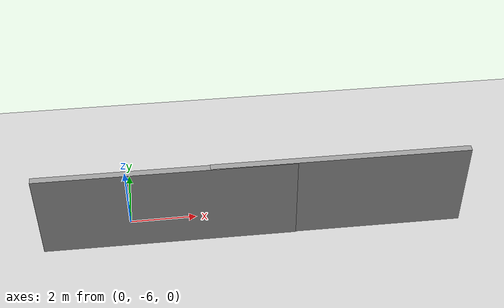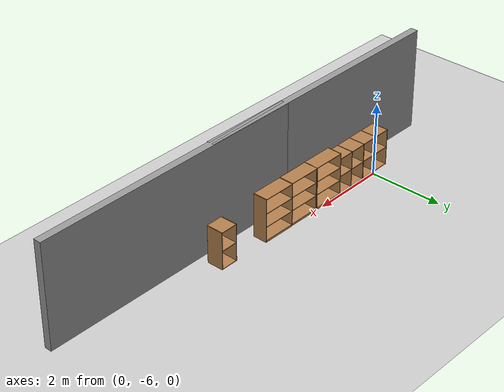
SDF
<sdf version="1.7">
 <world name="default">
  <model name="ground_plane">
   <static>1</static>
   <link name="link">
    <collision name="collision">
     <geometry><plane><normal>0 0 1</normal><size>100 100</size></plane></geometry>
     <surface><friction><ode><mu>100</mu><mu2>50</mu2></ode></friction></surface>
    </collision>
    <visual name="visual">
     <cast_shadows>0</cast_shadows>
     <geometry><plane><normal>0 0 1</normal><size>100 100</size></plane></geometry>
     <material>
      <script><uri>file://media/materials/scripts/gazebo.material</uri><name>Gazebo/Grey</name></script>
     </material>
    </visual>
   </link>
  </model>
  <model name="cabinet_clone">
   <static>1</static>
   <link name="cabinet_bottom_plate">
    <inertial>
     <pose>0 0 -1 0 -0 0</pose>
     <inertia><ixx>2.05</ixx><ixy>0</ixy><ixz>0</ixz><iyy>2.05</iyy><iyz>0</iyz><izz>2.05</izz></inertia>
     <mass>25</mass>
    </inertial>
    <collision name="cabinet_bottom_plate_geom">
     <pose>0 0 0.01 0 -0 0</pose>
     <geometry><box><size>0.45 0.45 0.02</size></box></geometry>
    </collision>
    <visual name="cabinet_bottom_plate_geom_visual">
     <pose>0 0 0.01 0 -0 0</pose>
     <geometry><box><size>0.45 0.45 0.02</size></box></geometry>
     <material>
      <script><uri>file://media/materials/scripts/gazebo.material</uri><name>Gazebo/Wood</name></script>
     </material>
    </visual>
    <collision name="cabinet_bottom_plate_geom_cabinet_back_plate">
     <pose>0.235 0 0.51 0 -0 0</pose>
     <geometry><box><size>0.02 0.45 1.02</size></box></geometry>
    </collision>
    <visual name="cabinet_bottom_plate_geom_cabinet_back_plate_visual">
     <pose>0.235 0 0.51 0 -0 0</pose>
     <geometry><box><size>0.02 0.45 1.02</size></box></geometry>
     <material>
      <script><uri>file://media/materials/scripts/gazebo.material</uri><name>Gazebo/Wood</name></script>
     </material>
    </visual>
    <collision name="cabinet_bottom_plate_geom_cabinet_left_plate">
     <pose>0 0.235 0.51 0 -0 0</pose>
     <geometry><box><size>0.45 0.02 1.02</size></box></geometry>
    </collision>
    <visual name="cabinet_bottom_plate_geom_cabinet_left_plate_visual">
     <pose>0 0.235 0.51 0 -0 0</pose>
     <geometry><box><size>0.45 0.02 1.02</size></box></geometry>
     <material>
      <script><uri>file://media/materials/scripts/gazebo.material</uri><name>Gazebo/Wood</name></script>
     </material>
    </visual>
    <collision name="cabinet_bottom_plate_geom_cabinet_middle_plate">
     <pose>0 0 0.51 0 -0 0</pose>
     <geometry><box><size>0.45 0.45 0.02</size></box></geometry>
    </collision>
    <visual name="cabinet_bottom_plate_geom_cabinet_middle_plate_visual">
     <pose>0 0 0.51 0 -0 0</pose>
     <geometry><box><size>0.45 0.45 0.02</size></box></geometry>
     <material>
      <script><uri>file://media/materials/scripts/gazebo.material</uri><name>Gazebo/Wood</name></script>
     </material>
    </visual>
    <collision name="cabinet_bottom_plate_geom_cabinet_right_plate">
     <pose>0 -0.235 0.51 0 -0 0</pose>
     <geometry><box><size>0.45 0.02 1.02</size></box></geometry>
    </collision>
    <visual name="cabinet_bottom_plate_geom_cabinet_right_plate_visual">
     <pose>0 -0.235 0.51 0 -0 0</pose>
     <geometry><box><size>0.45 0.02 1.02</size></box></geometry>
     <material>
      <script><uri>file://media/materials/scripts/gazebo.material</uri><name>Gazebo/Wood</name></script>
     </material>
    </visual>
    <collision name="cabinet_bottom_plate_geom_cabinet_top_plate">
     <pose>0 0 1.01 0 -0 0</pose>
     <geometry><box><size>0.45 0.45 0.02</size></box></geometry>
    </collision>
    <visual name="cabinet_bottom_plate_geom_cabinet_top_plate_visual">
     <pose>0 0 1.01 0 -0 0</pose>
     <geometry><box><size>0.45 0.45 0.02</size></box></geometry>
     <material>
      <script><uri>file://media/materials/scripts/gazebo.material</uri><name>Gazebo/Wood</name></script>
     </material>
    </visual>
   </link>
   <pose>5.23419 -6.26396 0 0 0 -1.56071</pose>
  </model>
  <model name="bookshelf_clone_1_clone">
   <static>1</static>
   <link name="link">
    <inertial><mass>1</mass></inertial>
    <collision name="back">
     <pose>0 0.005 0.6 0 -0 0</pose>
     <geometry><box><size>0.9 0.01 1.2</size></box></geometry>
    </collision>
    <visual name="visual1">
     <pose>0 0.005 0.6 0 -0 0</pose>
     <geometry><box><size>0.9 0.01 1.2</size></box></geometry>
     <material>
      <script><uri>file://media/materials/scripts/gazebo.material</uri><name>Gazebo/Wood</name></script>
     </material>
    </visual>
    <collision name="left_side">
     <pose>0.45 -0.195 0.6 0 -0 0</pose>
     <geometry><box><size>0.02 0.4 1.2</size></box></geometry>
    </collision>
    <visual name="visual2">
     <pose>0.45 -0.195 0.6 0 -0 0</pose>
     <geometry><box><size>0.02 0.4 1.2</size></box></geometry>
     <material>
      <script><uri>file://media/materials/scripts/gazebo.material</uri><name>Gazebo/Wood</name></script>
     </material>
    </visual>
    <collision name="right_side">
     <pose>-0.45 -0.195 0.6 0 -0 0</pose>
     <geometry><box><size>0.02 0.4 1.2</size></box></geometry>
    </collision>
    <visual name="visual3">
     <pose>-0.45 -0.195 0.6 0 -0 0</pose>
     <geometry><box><size>0.02 0.4 1.2</size></box></geometry>
     <material>
      <script><uri>file://media/materials/scripts/gazebo.material</uri><name>Gazebo/Wood</name></script>
     </material>
    </visual>
    <collision name="bottom">
     <pose>0 -0.195 0.03 0 -0 0</pose>
     <geometry><box><size>0.88 0.4 0.06</size></box></geometry>
    </collision>
    <visual name="visual4">
     <pose>0 -0.195 0.03 0 -0 0</pose>
     <geometry><box><size>0.88 0.4 0.06</size></box></geometry>
     <material>
      <script><uri>file://media/materials/scripts/gazebo.material</uri><name>Gazebo/Wood</name></script>
     </material>
    </visual>
    <collision name="top">
     <pose>0 -0.195 1.19 0 -0 0</pose>
     <geometry><box><size>0.88 0.4 0.02</size></box></geometry>
    </collision>
    <visual name="visual5">
     <pose>0 -0.195 1.19 0 -0 0</pose>
     <geometry><box><size>0.88 0.4 0.02</size></box></geometry>
     <material>
      <script><uri>file://media/materials/scripts/gazebo.material</uri><name>Gazebo/Wood</name></script>
     </material>
    </visual>
    <collision name="low_shelf">
     <pose>0 -0.195 0.43 0 -0 0</pose>
     <geometry><box><size>0.88 0.4 0.02</size></box></geometry>
    </collision>
    <visual name="visual6">
     <pose>0 -0.195 0.43 0 -0 0</pose>
     <geometry><box><size>0.88 0.4 0.02</size></box></geometry>
     <material>
      <script><uri>file://media/materials/scripts/gazebo.material</uri><name>Gazebo/Wood</name></script>
     </material>
    </visual>
    <collision name="high_shelf">
     <pose>0 -0.195 0.8 0 -0 0</pose>
     <geometry><box><size>0.88 0.4 0.02</size></box></geometry>
    </collision>
    <visual name="visual7">
     <pose>0 -0.195 0.8 0 -0 0</pose>
     <geometry><box><size>0.88 0.4 0.02</size></box></geometry>
     <material>
      <script><uri>file://media/materials/scripts/gazebo.material</uri><name>Gazebo/Wood</name></script>
     </material>
    </visual>
   </link>
   <pose>3.55377 -6.4057 0 0 -0 3.13655</pose>
  </model>
  <model name="bookshelf_clone_1_clone_clone">
   <static>1</static>
   <link name="link">
    <inertial><mass>1</mass></inertial>
    <collision name="back">
     <pose>0 0.005 0.6 0 -0 0</pose>
     <geometry><box><size>0.9 0.01 1.2</size></box></geometry>
    </collision>
    <visual name="visual1">
     <pose>0 0.005 0.6 0 -0 0</pose>
     <geometry><box><size>0.9 0.01 1.2</size></box></geometry>
     <material>
      <script><uri>file://media/materials/scripts/gazebo.material</uri><name>Gazebo/Wood</name></script>
     </material>
    </visual>
    <collision name="left_side">
     <pose>0.45 -0.195 0.6 0 -0 0</pose>
     <geometry><box><size>0.02 0.4 1.2</size></box></geometry>
    </collision>
    <visual name="visual2">
     <pose>0.45 -0.195 0.6 0 -0 0</pose>
     <geometry><box><size>0.02 0.4 1.2</size></box></geometry>
     <material>
      <script><uri>file://media/materials/scripts/gazebo.material</uri><name>Gazebo/Wood</name></script>
     </material>
    </visual>
    <collision name="right_side">
     <pose>-0.45 -0.195 0.6 0 -0 0</pose>
     <geometry><box><size>0.02 0.4 1.2</size></box></geometry>
    </collision>
    <visual name="visual3">
     <pose>-0.45 -0.195 0.6 0 -0 0</pose>
     <geometry><box><size>0.02 0.4 1.2</size></box></geometry>
     <material>
      <script><uri>file://media/materials/scripts/gazebo.material</uri><name>Gazebo/Wood</name></script>
     </material>
    </visual>
    <collision name="bottom">
     <pose>0 -0.195 0.03 0 -0 0</pose>
     <geometry><box><size>0.88 0.4 0.06</size></box></geometry>
    </collision>
    <visual name="visual4">
     <pose>0 -0.195 0.03 0 -0 0</pose>
     <geometry><box><size>0.88 0.4 0.06</size></box></geometry>
     <material>
      <script><uri>file://media/materials/scripts/gazebo.material</uri><name>Gazebo/Wood</name></script>
     </material>
    </visual>
    <collision name="top">
     <pose>0 -0.195 1.19 0 -0 0</pose>
     <geometry><box><size>0.88 0.4 0.02</size></box></geometry>
    </collision>
    <visual name="visual5">
     <pose>0 -0.195 1.19 0 -0 0</pose>
     <geometry><box><size>0.88 0.4 0.02</size></box></geometry>
     <material>
      <script><uri>file://media/materials/scripts/gazebo.material</uri><name>Gazebo/Wood</name></script>
     </material>
    </visual>
    <collision name="low_shelf">
     <pose>0 -0.195 0.43 0 -0 0</pose>
     <geometry><box><size>0.88 0.4 0.02</size></box></geometry>
    </collision>
    <visual name="visual6">
     <pose>0 -0.195 0.43 0 -0 0</pose>
     <geometry><box><size>0.88 0.4 0.02</size></box></geometry>
     <material>
      <script><uri>file://media/materials/scripts/gazebo.material</uri><name>Gazebo/Wood</name></script>
     </material>
    </visual>
    <collision name="high_shelf">
     <pose>0 -0.195 0.8 0 -0 0</pose>
     <geometry><box><size>0.88 0.4 0.02</size></box></geometry>
    </collision>
    <visual name="visual7">
     <pose>0 -0.195 0.8 0 -0 0</pose>
     <geometry><box><size>0.88 0.4 0.02</size></box></geometry>
     <material>
      <script><uri>file://media/materials/scripts/gazebo.material</uri><name>Gazebo/Wood</name></script>
     </material>
    </visual>
   </link>
   <pose>2.64586 -6.41095 0 0 -0 3.13655</pose>
  </model>
  <model name="bookshelf_clone_1_clone_clone_0">
   <static>1</static>
   <link name="link">
    <inertial><mass>1</mass></inertial>
    <collision name="back">
     <pose>0 0.005 0.6 0 -0 0</pose>
     <geometry><box><size>0.9 0.01 1.2</size></box></geometry>
    </collision>
    <visual name="visual1">
     <pose>0 0.005 0.6 0 -0 0</pose>
     <geometry><box><size>0.9 0.01 1.2</size></box></geometry>
     <material>
      <script><uri>file://media/materials/scripts/gazebo.material</uri><name>Gazebo/Wood</name></script>
     </material>
    </visual>
    <collision name="left_side">
     <pose>0.45 -0.195 0.6 0 -0 0</pose>
     <geometry><box><size>0.02 0.4 1.2</size></box></geometry>
    </collision>
    <visual name="visual2">
     <pose>0.45 -0.195 0.6 0 -0 0</pose>
     <geometry><box><size>0.02 0.4 1.2</size></box></geometry>
     <material>
      <script><uri>file://media/materials/scripts/gazebo.material</uri><name>Gazebo/Wood</name></script>
     </material>
    </visual>
    <collision name="right_side">
     <pose>-0.45 -0.195 0.6 0 -0 0</pose>
     <geometry><box><size>0.02 0.4 1.2</size></box></geometry>
    </collision>
    <visual name="visual3">
     <pose>-0.45 -0.195 0.6 0 -0 0</pose>
     <geometry><box><size>0.02 0.4 1.2</size></box></geometry>
     <material>
      <script><uri>file://media/materials/scripts/gazebo.material</uri><name>Gazebo/Wood</name></script>
     </material>
    </visual>
    <collision name="bottom">
     <pose>0 -0.195 0.03 0 -0 0</pose>
     <geometry><box><size>0.88 0.4 0.06</size></box></geometry>
    </collision>
    <visual name="visual4">
     <pose>0 -0.195 0.03 0 -0 0</pose>
     <geometry><box><size>0.88 0.4 0.06</size></box></geometry>
     <material>
      <script><uri>file://media/materials/scripts/gazebo.material</uri><name>Gazebo/Wood</name></script>
     </material>
    </visual>
    <collision name="top">
     <pose>0 -0.195 1.19 0 -0 0</pose>
     <geometry><box><size>0.88 0.4 0.02</size></box></geometry>
    </collision>
    <visual name="visual5">
     <pose>0 -0.195 1.19 0 -0 0</pose>
     <geometry><box><size>0.88 0.4 0.02</size></box></geometry>
     <material>
      <script><uri>file://media/materials/scripts/gazebo.material</uri><name>Gazebo/Wood</name></script>
     </material>
    </visual>
    <collision name="low_shelf">
     <pose>0 -0.195 0.43 0 -0 0</pose>
     <geometry><box><size>0.88 0.4 0.02</size></box></geometry>
    </collision>
    <visual name="visual6">
     <pose>0 -0.195 0.43 0 -0 0</pose>
     <geometry><box><size>0.88 0.4 0.02</size></box></geometry>
     <material>
      <script><uri>file://media/materials/scripts/gazebo.material</uri><name>Gazebo/Wood</name></script>
     </material>
    </visual>
    <collision name="high_shelf">
     <pose>0 -0.195 0.8 0 -0 0</pose>
     <geometry><box><size>0.88 0.4 0.02</size></box></geometry>
    </collision>
    <visual name="visual7">
     <pose>0 -0.195 0.8 0 -0 0</pose>
     <geometry><box><size>0.88 0.4 0.02</size></box></geometry>
     <material>
      <script><uri>file://media/materials/scripts/gazebo.material</uri><name>Gazebo/Wood</name></script>
     </material>
    </visual>
   </link>
   <pose>1.76762 -6.4161 0 0 -0 3.13655</pose>
  </model>
  <model name="cabinet_clone_1_clone">
   <static>1</static>
   <link name="cabinet_bottom_plate">
    <inertial>
     <pose>0 0 -1 0 -0 0</pose>
     <inertia><ixx>2.05</ixx><ixy>0</ixy><ixz>0</ixz><iyy>2.05</iyy><iyz>0</iyz><izz>2.05</izz></inertia>
     <mass>25</mass>
    </inertial>
    <collision name="cabinet_bottom_plate_geom">
     <pose>0 0 0.01 0 -0 0</pose>
     <geometry><box><size>0.45 0.45 0.02</size></box></geometry>
    </collision>
    <visual name="cabinet_bottom_plate_geom_visual">
     <pose>0 0 0.01 0 -0 0</pose>
     <geometry><box><size>0.45 0.45 0.02</size></box></geometry>
     <material>
      <script><uri>file://media/materials/scripts/gazebo.material</uri><name>Gazebo/Wood</name></script>
     </material>
    </visual>
    <collision name="cabinet_bottom_plate_geom_cabinet_back_plate">
     <pose>0.235 0 0.51 0 -0 0</pose>
     <geometry><box><size>0.02 0.45 1.02</size></box></geometry>
    </collision>
    <visual name="cabinet_bottom_plate_geom_cabinet_back_plate_visual">
     <pose>0.235 0 0.51 0 -0 0</pose>
     <geometry><box><size>0.02 0.45 1.02</size></box></geometry>
     <material>
      <script><uri>file://media/materials/scripts/gazebo.material</uri><name>Gazebo/Wood</name></script>
     </material>
    </visual>
    <collision name="cabinet_bottom_plate_geom_cabinet_left_plate">
     <pose>0 0.235 0.51 0 -0 0</pose>
     <geometry><box><size>0.45 0.02 1.02</size></box></geometry>
    </collision>
    <visual name="cabinet_bottom_plate_geom_cabinet_left_plate_visual">
     <pose>0 0.235 0.51 0 -0 0</pose>
     <geometry><box><size>0.45 0.02 1.02</size></box></geometry>
     <material>
      <script><uri>file://media/materials/scripts/gazebo.material</uri><name>Gazebo/Wood</name></script>
     </material>
    </visual>
    <collision name="cabinet_bottom_plate_geom_cabinet_middle_plate">
     <pose>0 0 0.51 0 -0 0</pose>
     <geometry><box><size>0.45 0.45 0.02</size></box></geometry>
    </collision>
    <visual name="cabinet_bottom_plate_geom_cabinet_middle_plate_visual">
     <pose>0 0 0.51 0 -0 0</pose>
     <geometry><box><size>0.45 0.45 0.02</size></box></geometry>
     <material>
      <script><uri>file://media/materials/scripts/gazebo.material</uri><name>Gazebo/Wood</name></script>
     </material>
    </visual>
    <collision name="cabinet_bottom_plate_geom_cabinet_right_plate">
     <pose>0 -0.235 0.51 0 -0 0</pose>
     <geometry><box><size>0.45 0.02 1.02</size></box></geometry>
    </collision>
    <visual name="cabinet_bottom_plate_geom_cabinet_right_plate_visual">
     <pose>0 -0.235 0.51 0 -0 0</pose>
     <geometry><box><size>0.45 0.02 1.02</size></box></geometry>
     <material>
      <script><uri>file://media/materials/scripts/gazebo.material</uri><name>Gazebo/Wood</name></script>
     </material>
    </visual>
    <collision name="cabinet_bottom_plate_geom_cabinet_top_plate">
     <pose>0 0 1.01 0 -0 0</pose>
     <geometry><box><size>0.45 0.45 0.02</size></box></geometry>
    </collision>
    <visual name="cabinet_bottom_plate_geom_cabinet_top_plate_visual">
     <pose>0 0 1.01 0 -0 0</pose>
     <geometry><box><size>0.45 0.45 0.02</size></box></geometry>
     <material>
      <script><uri>file://media/materials/scripts/gazebo.material</uri><name>Gazebo/Wood</name></script>
     </material>
    </visual>
   </link>
   <pose>1.07754 -6.27365 0 0 0 -1.56071</pose>
  </model>
  <model name="cabinet_clone_1_clone_0">
   <static>1</static>
   <link name="cabinet_bottom_plate">
    <inertial>
     <pose>0 0 -1 0 -0 0</pose>
     <inertia><ixx>2.05</ixx><ixy>0</ixy><ixz>0</ixz><iyy>2.05</iyy><iyz>0</iyz><izz>2.05</izz></inertia>
     <mass>25</mass>
    </inertial>
    <collision name="cabinet_bottom_plate_geom">
     <pose>0 0 0.01 0 -0 0</pose>
     <geometry><box><size>0.45 0.45 0.02</size></box></geometry>
    </collision>
    <visual name="cabinet_bottom_plate_geom_visual">
     <pose>0 0 0.01 0 -0 0</pose>
     <geometry><box><size>0.45 0.45 0.02</size></box></geometry>
     <material>
      <script><uri>file://media/materials/scripts/gazebo.material</uri><name>Gazebo/Wood</name></script>
     </material>
    </visual>
    <collision name="cabinet_bottom_plate_geom_cabinet_back_plate">
     <pose>0.235 0 0.51 0 -0 0</pose>
     <geometry><box><size>0.02 0.45 1.02</size></box></geometry>
    </collision>
    <visual name="cabinet_bottom_plate_geom_cabinet_back_plate_visual">
     <pose>0.235 0 0.51 0 -0 0</pose>
     <geometry><box><size>0.02 0.45 1.02</size></box></geometry>
     <material>
      <script><uri>file://media/materials/scripts/gazebo.material</uri><name>Gazebo/Wood</name></script>
     </material>
    </visual>
    <collision name="cabinet_bottom_plate_geom_cabinet_left_plate">
     <pose>0 0.235 0.51 0 -0 0</pose>
     <geometry><box><size>0.45 0.02 1.02</size></box></geometry>
    </collision>
    <visual name="cabinet_bottom_plate_geom_cabinet_left_plate_visual">
     <pose>0 0.235 0.51 0 -0 0</pose>
     <geometry><box><size>0.45 0.02 1.02</size></box></geometry>
     <material>
      <script><uri>file://media/materials/scripts/gazebo.material</uri><name>Gazebo/Wood</name></script>
     </material>
    </visual>
    <collision name="cabinet_bottom_plate_geom_cabinet_middle_plate">
     <pose>0 0 0.51 0 -0 0</pose>
     <geometry><box><size>0.45 0.45 0.02</size></box></geometry>
    </collision>
    <visual name="cabinet_bottom_plate_geom_cabinet_middle_plate_visual">
     <pose>0 0 0.51 0 -0 0</pose>
     <geometry><box><size>0.45 0.45 0.02</size></box></geometry>
     <material>
      <script><uri>file://media/materials/scripts/gazebo.material</uri><name>Gazebo/Wood</name></script>
     </material>
    </visual>
    <collision name="cabinet_bottom_plate_geom_cabinet_right_plate">
     <pose>0 -0.235 0.51 0 -0 0</pose>
     <geometry><box><size>0.45 0.02 1.02</size></box></geometry>
    </collision>
    <visual name="cabinet_bottom_plate_geom_cabinet_right_plate_visual">
     <pose>0 -0.235 0.51 0 -0 0</pose>
     <geometry><box><size>0.45 0.02 1.02</size></box></geometry>
     <material>
      <script><uri>file://media/materials/scripts/gazebo.material</uri><name>Gazebo/Wood</name></script>
     </material>
    </visual>
    <collision name="cabinet_bottom_plate_geom_cabinet_top_plate">
     <pose>0 0 1.01 0 -0 0</pose>
     <geometry><box><size>0.45 0.45 0.02</size></box></geometry>
    </collision>
    <visual name="cabinet_bottom_plate_geom_cabinet_top_plate_visual">
     <pose>0 0 1.01 0 -0 0</pose>
     <geometry><box><size>0.45 0.45 0.02</size></box></geometry>
     <material>
      <script><uri>file://media/materials/scripts/gazebo.material</uri><name>Gazebo/Wood</name></script>
     </material>
    </visual>
   </link>
   <pose>0.606015 -6.28043 0 0 0 -1.56071</pose>
  </model>
  <model name="cabinet_clone_1_clone_1">
   <static>1</static>
   <link name="cabinet_bottom_plate">
    <inertial>
     <pose>0 0 -1 0 -0 0</pose>
     <inertia><ixx>2.05</ixx><ixy>0</ixy><ixz>0</ixz><iyy>2.05</iyy><iyz>0</iyz><izz>2.05</izz></inertia>
     <mass>25</mass>
    </inertial>
    <collision name="cabinet_bottom_plate_geom">
     <pose>0 0 0.01 0 -0 0</pose>
     <geometry><box><size>0.45 0.45 0.02</size></box></geometry>
    </collision>
    <visual name="cabinet_bottom_plate_geom_visual">
     <pose>0 0 0.01 0 -0 0</pose>
     <geometry><box><size>0.45 0.45 0.02</size></box></geometry>
     <material>
      <script><uri>file://media/materials/scripts/gazebo.material</uri><name>Gazebo/Wood</name></script>
     </material>
    </visual>
    <collision name="cabinet_bottom_plate_geom_cabinet_back_plate">
     <pose>0.235 0 0.51 0 -0 0</pose>
     <geometry><box><size>0.02 0.45 1.02</size></box></geometry>
    </collision>
    <visual name="cabinet_bottom_plate_geom_cabinet_back_plate_visual">
     <pose>0.235 0 0.51 0 -0 0</pose>
     <geometry><box><size>0.02 0.45 1.02</size></box></geometry>
     <material>
      <script><uri>file://media/materials/scripts/gazebo.material</uri><name>Gazebo/Wood</name></script>
     </material>
    </visual>
    <collision name="cabinet_bottom_plate_geom_cabinet_left_plate">
     <pose>0 0.235 0.51 0 -0 0</pose>
     <geometry><box><size>0.45 0.02 1.02</size></box></geometry>
    </collision>
    <visual name="cabinet_bottom_plate_geom_cabinet_left_plate_visual">
     <pose>0 0.235 0.51 0 -0 0</pose>
     <geometry><box><size>0.45 0.02 1.02</size></box></geometry>
     <material>
      <script><uri>file://media/materials/scripts/gazebo.material</uri><name>Gazebo/Wood</name></script>
     </material>
    </visual>
    <collision name="cabinet_bottom_plate_geom_cabinet_middle_plate">
     <pose>0 0 0.51 0 -0 0</pose>
     <geometry><box><size>0.45 0.45 0.02</size></box></geometry>
    </collision>
    <visual name="cabinet_bottom_plate_geom_cabinet_middle_plate_visual">
     <pose>0 0 0.51 0 -0 0</pose>
     <geometry><box><size>0.45 0.45 0.02</size></box></geometry>
     <material>
      <script><uri>file://media/materials/scripts/gazebo.material</uri><name>Gazebo/Wood</name></script>
     </material>
    </visual>
    <collision name="cabinet_bottom_plate_geom_cabinet_right_plate">
     <pose>0 -0.235 0.51 0 -0 0</pose>
     <geometry><box><size>0.45 0.02 1.02</size></box></geometry>
    </collision>
    <visual name="cabinet_bottom_plate_geom_cabinet_right_plate_visual">
     <pose>0 -0.235 0.51 0 -0 0</pose>
     <geometry><box><size>0.45 0.02 1.02</size></box></geometry>
     <material>
      <script><uri>file://media/materials/scripts/gazebo.material</uri><name>Gazebo/Wood</name></script>
     </material>
    </visual>
    <collision name="cabinet_bottom_plate_geom_cabinet_top_plate">
     <pose>0 0 1.01 0 -0 0</pose>
     <geometry><box><size>0.45 0.45 0.02</size></box></geometry>
    </collision>
    <visual name="cabinet_bottom_plate_geom_cabinet_top_plate_visual">
     <pose>0 0 1.01 0 -0 0</pose>
     <geometry><box><size>0.45 0.45 0.02</size></box></geometry>
     <material>
      <script><uri>file://media/materials/scripts/gazebo.material</uri><name>Gazebo/Wood</name></script>
     </material>
    </visual>
   </link>
   <pose>0.137618 -6.29036 0 0 0 -1.56071</pose>
  </model>
  <model name="cabinet_clone_1_clone_2">
   <static>1</static>
   <link name="cabinet_bottom_plate">
    <inertial>
     <pose>0 0 -1 0 -0 0</pose>
     <inertia><ixx>2.05</ixx><ixy>0</ixy><ixz>0</ixz><iyy>2.05</iyy><iyz>0</iyz><izz>2.05</izz></inertia>
     <mass>25</mass>
    </inertial>
    <collision name="cabinet_bottom_plate_geom">
     <pose>0 0 0.01 0 -0 0</pose>
     <geometry><box><size>0.45 0.45 0.02</size></box></geometry>
    </collision>
    <visual name="cabinet_bottom_plate_geom_visual">
     <pose>0 0 0.01 0 -0 0</pose>
     <geometry><box><size>0.45 0.45 0.02</size></box></geometry>
     <material>
      <script><uri>file://media/materials/scripts/gazebo.material</uri><name>Gazebo/Wood</name></script>
     </material>
    </visual>
    <collision name="cabinet_bottom_plate_geom_cabinet_back_plate">
     <pose>0.235 0 0.51 0 -0 0</pose>
     <geometry><box><size>0.02 0.45 1.02</size></box></geometry>
    </collision>
    <visual name="cabinet_bottom_plate_geom_cabinet_back_plate_visual">
     <pose>0.235 0 0.51 0 -0 0</pose>
     <geometry><box><size>0.02 0.45 1.02</size></box></geometry>
     <material>
      <script><uri>file://media/materials/scripts/gazebo.material</uri><name>Gazebo/Wood</name></script>
     </material>
    </visual>
    <collision name="cabinet_bottom_plate_geom_cabinet_left_plate">
     <pose>0 0.235 0.51 0 -0 0</pose>
     <geometry><box><size>0.45 0.02 1.02</size></box></geometry>
    </collision>
    <visual name="cabinet_bottom_plate_geom_cabinet_left_plate_visual">
     <pose>0 0.235 0.51 0 -0 0</pose>
     <geometry><box><size>0.45 0.02 1.02</size></box></geometry>
     <material>
      <script><uri>file://media/materials/scripts/gazebo.material</uri><name>Gazebo/Wood</name></script>
     </material>
    </visual>
    <collision name="cabinet_bottom_plate_geom_cabinet_middle_plate">
     <pose>0 0 0.51 0 -0 0</pose>
     <geometry><box><size>0.45 0.45 0.02</size></box></geometry>
    </collision>
    <visual name="cabinet_bottom_plate_geom_cabinet_middle_plate_visual">
     <pose>0 0 0.51 0 -0 0</pose>
     <geometry><box><size>0.45 0.45 0.02</size></box></geometry>
     <material>
      <script><uri>file://media/materials/scripts/gazebo.material</uri><name>Gazebo/Wood</name></script>
     </material>
    </visual>
    <collision name="cabinet_bottom_plate_geom_cabinet_right_plate">
     <pose>0 -0.235 0.51 0 -0 0</pose>
     <geometry><box><size>0.45 0.02 1.02</size></box></geometry>
    </collision>
    <visual name="cabinet_bottom_plate_geom_cabinet_right_plate_visual">
     <pose>0 -0.235 0.51 0 -0 0</pose>
     <geometry><box><size>0.45 0.02 1.02</size></box></geometry>
     <material>
      <script><uri>file://media/materials/scripts/gazebo.material</uri><name>Gazebo/Wood</name></script>
     </material>
    </visual>
    <collision name="cabinet_bottom_plate_geom_cabinet_top_plate">
     <pose>0 0 1.01 0 -0 0</pose>
     <geometry><box><size>0.45 0.45 0.02</size></box></geometry>
    </collision>
    <visual name="cabinet_bottom_plate_geom_cabinet_top_plate_visual">
     <pose>0 0 1.01 0 -0 0</pose>
     <geometry><box><size>0.45 0.45 0.02</size></box></geometry>
     <material>
      <script><uri>file://media/materials/scripts/gazebo.material</uri><name>Gazebo/Wood</name></script>
     </material>
    </visual>
   </link>
   <pose>-0.332082 -6.29282 0 0 0 -1.56071</pose>
  </model>
  <model name="grey_wall">
   <static>1</static>
   <link name="link">
    <pose>0 0 1.4 0 -0 0</pose>
    <collision name="collision"><geometry><box><size>7.5 0.2 2.8</size></box></geometry></collision>
    <visual name="visual">
     <cast_shadows>0</cast_shadows>
     <geometry><box><size>7.5 0.2 2.8</size></box></geometry>
     <material>
      <script>
       <uri>model://grey_wall/materials/scripts</uri>
       <uri>model://grey_wall/materials/textures</uri>
       <name>vrc/grey_wall</name>
      </script>
     </material>
    </visual>
   </link>
   <pose>1.1921 -6.8519 0 0 -0 0</pose>
  </model>
  <model name="grey_wall_clone_0">
   <static>1</static>
   <link name="link">
    <pose>0 0 1.4 0 -0 0</pose>
    <collision name="collision"><geometry><box><size>7.5 0.2 2.8</size></box></geometry></collision>
    <visual name="visual">
     <cast_shadows>0</cast_shadows>
     <geometry><box><size>7.5 0.2 2.8</size></box></geometry>
     <material>
      <script>
       <uri>model://grey_wall/materials/scripts</uri>
       <uri>model://grey_wall/materials/textures</uri>
       <name>vrc/grey_wall</name>
      </script>
     </material>
    </visual>
   </link>
   <pose>6.20877 -6.83259 0 0 -0 0</pose>
  </model>
 </world>
</sdf>
